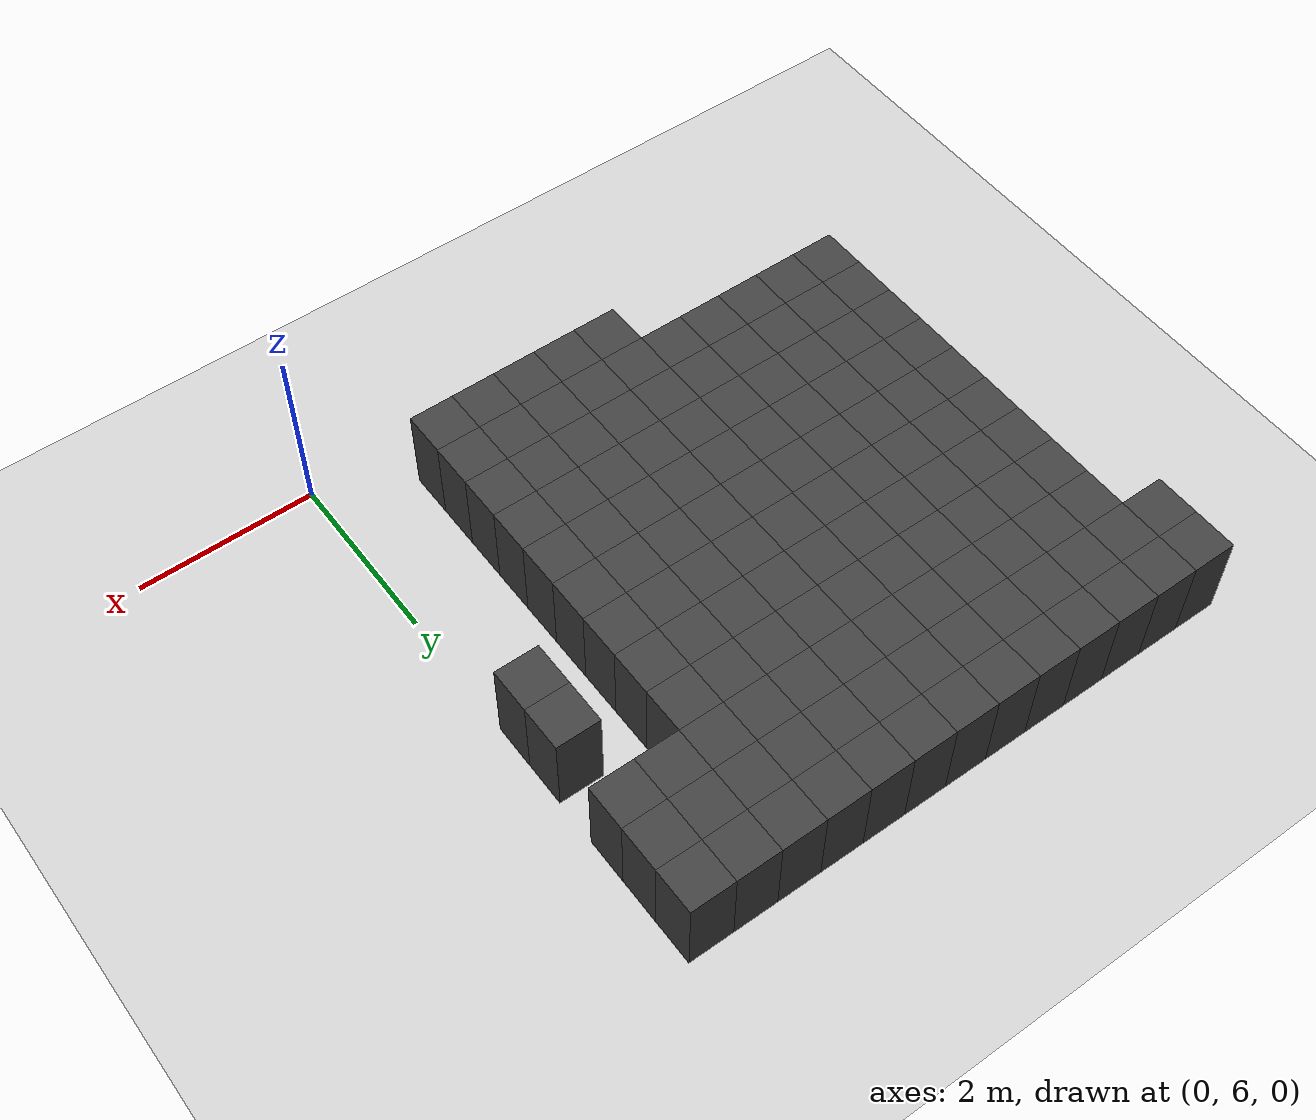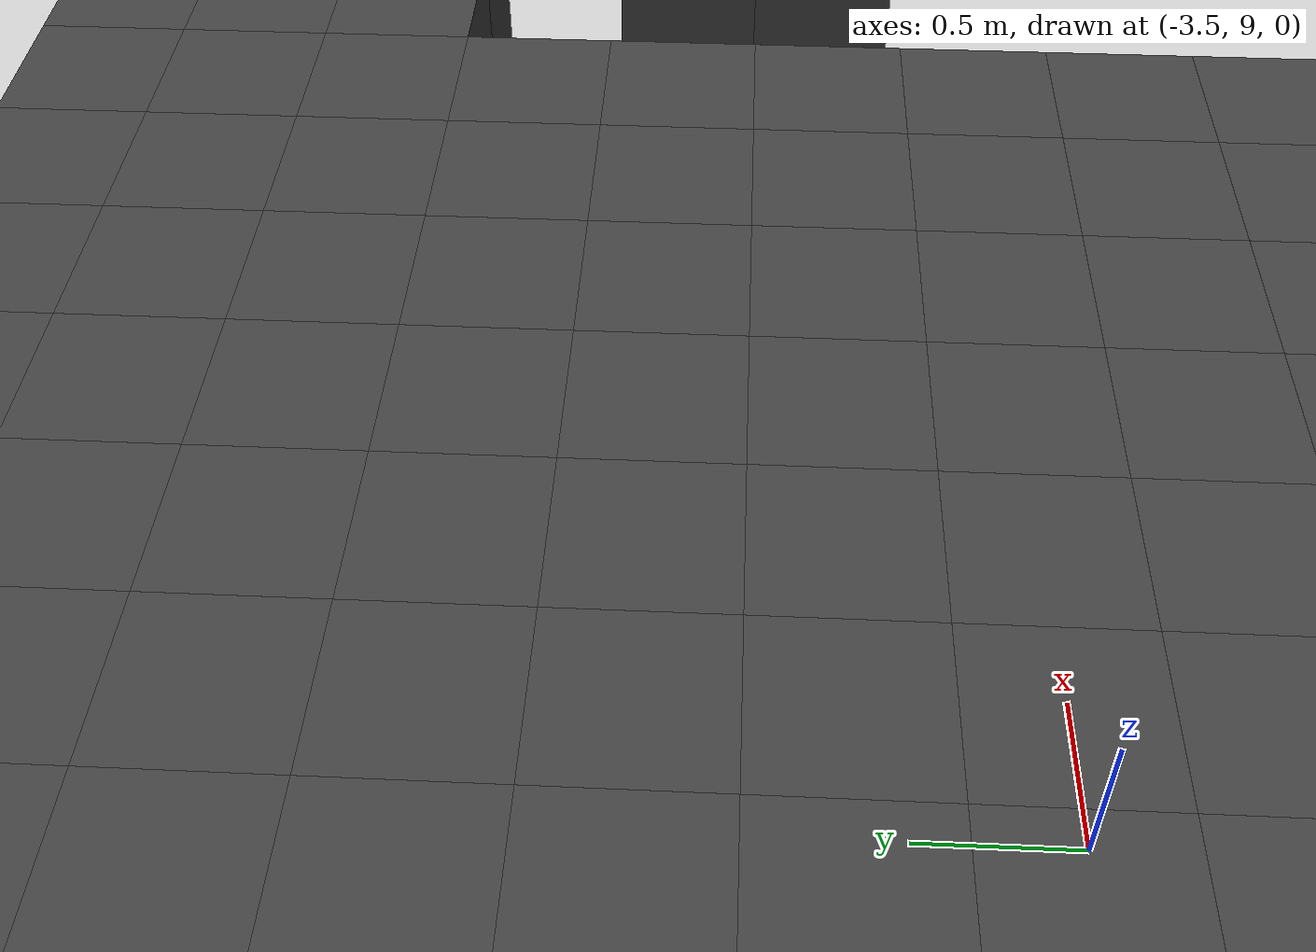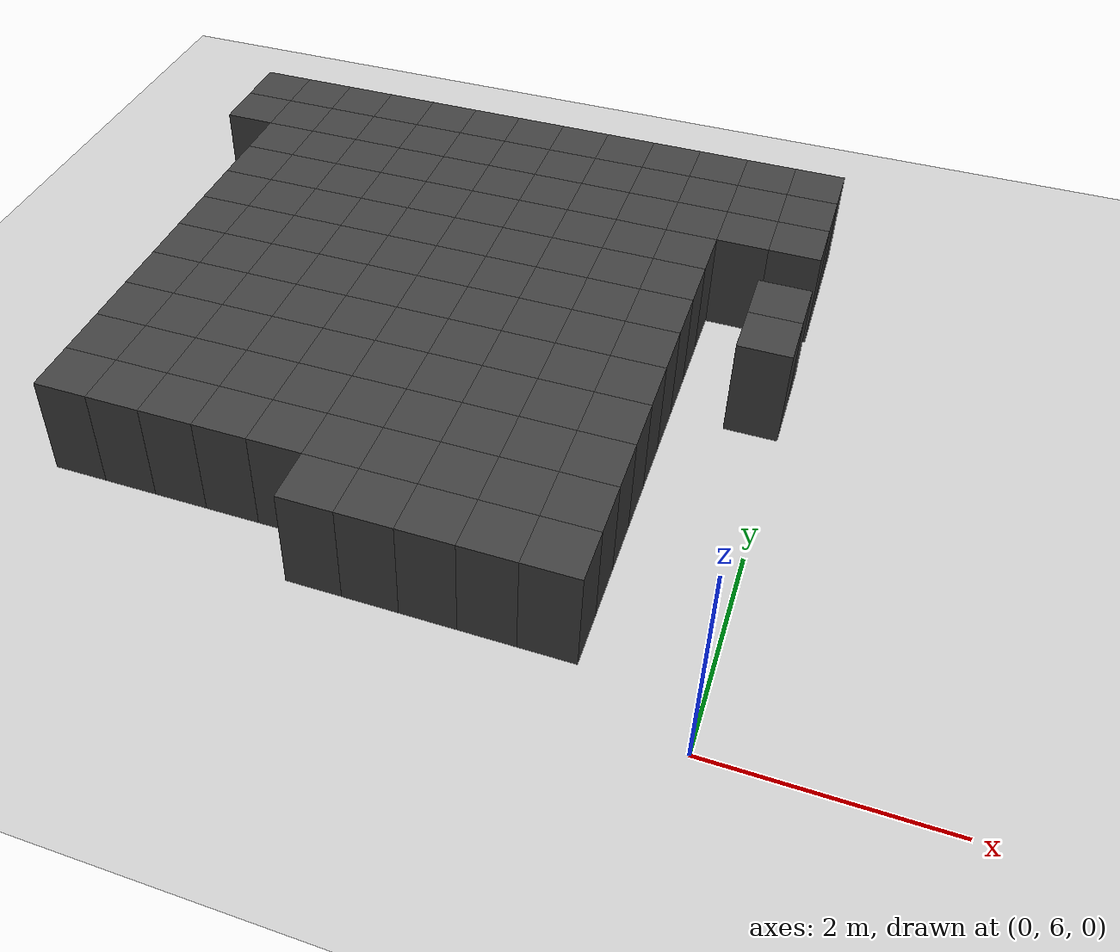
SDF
<sdf version="1.7">
 <world name="map_10764">
  <model name="ground_plane">
   <static>true</static>
   <link name="link">
    <collision name="collision">
     <geometry><plane><normal>0 0 1</normal><size>200 200</size></plane></geometry>
    </collision>
    <visual name="visual">
     <geometry><plane><normal>0 0 1</normal><size>200 200</size></plane></geometry>
     <material><ambient>0.8 0.8 0.8 1</ambient><diffuse>0.8 0.8 0.8 1</diffuse></material>
    </visual>
   </link>
  </model>
  <model name="maze_environment">
   <static>true</static>
   <link name="wall_12">
    <pose>-6.250 12.250 0.500 0 0 0</pose>
    <collision name="col"><geometry><box><size>0.5 0.5 1.0</size></box></geometry></collision>
    <visual name="vis">
     <geometry><box><size>0.5 0.5 1.0</size></box></geometry>
     <material><ambient>0.15 0.15 0.15 1</ambient><diffuse>0.25 0.25 0.25 1</diffuse></material>
    </visual>
   </link>
   <link name="wall_13">
    <pose>-5.750 12.250 0.500 0 0 0</pose>
    <collision name="col"><geometry><box><size>0.5 0.5 1.0</size></box></geometry></collision>
    <visual name="vis">
     <geometry><box><size>0.5 0.5 1.0</size></box></geometry>
     <material><ambient>0.15 0.15 0.15 1</ambient><diffuse>0.25 0.25 0.25 1</diffuse></material>
    </visual>
   </link>
   <link name="wall_14">
    <pose>-5.250 12.250 0.500 0 0 0</pose>
    <collision name="col"><geometry><box><size>0.5 0.5 1.0</size></box></geometry></collision>
    <visual name="vis">
     <geometry><box><size>0.5 0.5 1.0</size></box></geometry>
     <material><ambient>0.15 0.15 0.15 1</ambient><diffuse>0.25 0.25 0.25 1</diffuse></material>
    </visual>
   </link>
   <link name="wall_15">
    <pose>-4.750 12.250 0.500 0 0 0</pose>
    <collision name="col"><geometry><box><size>0.5 0.5 1.0</size></box></geometry></collision>
    <visual name="vis">
     <geometry><box><size>0.5 0.5 1.0</size></box></geometry>
     <material><ambient>0.15 0.15 0.15 1</ambient><diffuse>0.25 0.25 0.25 1</diffuse></material>
    </visual>
   </link>
   <link name="wall_16">
    <pose>-4.250 12.250 0.500 0 0 0</pose>
    <collision name="col"><geometry><box><size>0.5 0.5 1.0</size></box></geometry></collision>
    <visual name="vis">
     <geometry><box><size>0.5 0.5 1.0</size></box></geometry>
     <material><ambient>0.15 0.15 0.15 1</ambient><diffuse>0.25 0.25 0.25 1</diffuse></material>
    </visual>
   </link>
   <link name="wall_17">
    <pose>-3.750 12.250 0.500 0 0 0</pose>
    <collision name="col"><geometry><box><size>0.5 0.5 1.0</size></box></geometry></collision>
    <visual name="vis">
     <geometry><box><size>0.5 0.5 1.0</size></box></geometry>
     <material><ambient>0.15 0.15 0.15 1</ambient><diffuse>0.25 0.25 0.25 1</diffuse></material>
    </visual>
   </link>
   <link name="wall_18">
    <pose>-3.250 12.250 0.500 0 0 0</pose>
    <collision name="col"><geometry><box><size>0.5 0.5 1.0</size></box></geometry></collision>
    <visual name="vis">
     <geometry><box><size>0.5 0.5 1.0</size></box></geometry>
     <material><ambient>0.15 0.15 0.15 1</ambient><diffuse>0.25 0.25 0.25 1</diffuse></material>
    </visual>
   </link>
   <link name="wall_19">
    <pose>-2.750 12.250 0.500 0 0 0</pose>
    <collision name="col"><geometry><box><size>0.5 0.5 1.0</size></box></geometry></collision>
    <visual name="vis">
     <geometry><box><size>0.5 0.5 1.0</size></box></geometry>
     <material><ambient>0.15 0.15 0.15 1</ambient><diffuse>0.25 0.25 0.25 1</diffuse></material>
    </visual>
   </link>
   <link name="wall_20">
    <pose>-2.250 12.250 0.500 0 0 0</pose>
    <collision name="col"><geometry><box><size>0.5 0.5 1.0</size></box></geometry></collision>
    <visual name="vis">
     <geometry><box><size>0.5 0.5 1.0</size></box></geometry>
     <material><ambient>0.15 0.15 0.15 1</ambient><diffuse>0.25 0.25 0.25 1</diffuse></material>
    </visual>
   </link>
   <link name="wall_21">
    <pose>-1.750 12.250 0.500 0 0 0</pose>
    <collision name="col"><geometry><box><size>0.5 0.5 1.0</size></box></geometry></collision>
    <visual name="vis">
     <geometry><box><size>0.5 0.5 1.0</size></box></geometry>
     <material><ambient>0.15 0.15 0.15 1</ambient><diffuse>0.25 0.25 0.25 1</diffuse></material>
    </visual>
   </link>
   <link name="wall_22">
    <pose>-1.250 12.250 0.500 0 0 0</pose>
    <collision name="col"><geometry><box><size>0.5 0.5 1.0</size></box></geometry></collision>
    <visual name="vis">
     <geometry><box><size>0.5 0.5 1.0</size></box></geometry>
     <material><ambient>0.15 0.15 0.15 1</ambient><diffuse>0.25 0.25 0.25 1</diffuse></material>
    </visual>
   </link>
   <link name="wall_23">
    <pose>-0.750 12.250 0.500 0 0 0</pose>
    <collision name="col"><geometry><box><size>0.5 0.5 1.0</size></box></geometry></collision>
    <visual name="vis">
     <geometry><box><size>0.5 0.5 1.0</size></box></geometry>
     <material><ambient>0.15 0.15 0.15 1</ambient><diffuse>0.25 0.25 0.25 1</diffuse></material>
    </visual>
   </link>
   <link name="wall_24">
    <pose>-0.250 12.250 0.500 0 0 0</pose>
    <collision name="col"><geometry><box><size>0.5 0.5 1.0</size></box></geometry></collision>
    <visual name="vis">
     <geometry><box><size>0.5 0.5 1.0</size></box></geometry>
     <material><ambient>0.15 0.15 0.15 1</ambient><diffuse>0.25 0.25 0.25 1</diffuse></material>
    </visual>
   </link>
   <link name="wall_59">
    <pose>-6.250 11.750 0.500 0 0 0</pose>
    <collision name="col"><geometry><box><size>0.5 0.5 1.0</size></box></geometry></collision>
    <visual name="vis">
     <geometry><box><size>0.5 0.5 1.0</size></box></geometry>
     <material><ambient>0.15 0.15 0.15 1</ambient><diffuse>0.25 0.25 0.25 1</diffuse></material>
    </visual>
   </link>
   <link name="wall_60">
    <pose>-5.750 11.750 0.500 0 0 0</pose>
    <collision name="col"><geometry><box><size>0.5 0.5 1.0</size></box></geometry></collision>
    <visual name="vis">
     <geometry><box><size>0.5 0.5 1.0</size></box></geometry>
     <material><ambient>0.15 0.15 0.15 1</ambient><diffuse>0.25 0.25 0.25 1</diffuse></material>
    </visual>
   </link>
   <link name="wall_61">
    <pose>-5.250 11.750 0.500 0 0 0</pose>
    <collision name="col"><geometry><box><size>0.5 0.5 1.0</size></box></geometry></collision>
    <visual name="vis">
     <geometry><box><size>0.5 0.5 1.0</size></box></geometry>
     <material><ambient>0.15 0.15 0.15 1</ambient><diffuse>0.25 0.25 0.25 1</diffuse></material>
    </visual>
   </link>
   <link name="wall_62">
    <pose>-4.750 11.750 0.500 0 0 0</pose>
    <collision name="col"><geometry><box><size>0.5 0.5 1.0</size></box></geometry></collision>
    <visual name="vis">
     <geometry><box><size>0.5 0.5 1.0</size></box></geometry>
     <material><ambient>0.15 0.15 0.15 1</ambient><diffuse>0.25 0.25 0.25 1</diffuse></material>
    </visual>
   </link>
   <link name="wall_63">
    <pose>-4.250 11.750 0.500 0 0 0</pose>
    <collision name="col"><geometry><box><size>0.5 0.5 1.0</size></box></geometry></collision>
    <visual name="vis">
     <geometry><box><size>0.5 0.5 1.0</size></box></geometry>
     <material><ambient>0.15 0.15 0.15 1</ambient><diffuse>0.25 0.25 0.25 1</diffuse></material>
    </visual>
   </link>
   <link name="wall_64">
    <pose>-3.750 11.750 0.500 0 0 0</pose>
    <collision name="col"><geometry><box><size>0.5 0.5 1.0</size></box></geometry></collision>
    <visual name="vis">
     <geometry><box><size>0.5 0.5 1.0</size></box></geometry>
     <material><ambient>0.15 0.15 0.15 1</ambient><diffuse>0.25 0.25 0.25 1</diffuse></material>
    </visual>
   </link>
   <link name="wall_65">
    <pose>-3.250 11.750 0.500 0 0 0</pose>
    <collision name="col"><geometry><box><size>0.5 0.5 1.0</size></box></geometry></collision>
    <visual name="vis">
     <geometry><box><size>0.5 0.5 1.0</size></box></geometry>
     <material><ambient>0.15 0.15 0.15 1</ambient><diffuse>0.25 0.25 0.25 1</diffuse></material>
    </visual>
   </link>
   <link name="wall_66">
    <pose>-2.750 11.750 0.500 0 0 0</pose>
    <collision name="col"><geometry><box><size>0.5 0.5 1.0</size></box></geometry></collision>
    <visual name="vis">
     <geometry><box><size>0.5 0.5 1.0</size></box></geometry>
     <material><ambient>0.15 0.15 0.15 1</ambient><diffuse>0.25 0.25 0.25 1</diffuse></material>
    </visual>
   </link>
   <link name="wall_67">
    <pose>-2.250 11.750 0.500 0 0 0</pose>
    <collision name="col"><geometry><box><size>0.5 0.5 1.0</size></box></geometry></collision>
    <visual name="vis">
     <geometry><box><size>0.5 0.5 1.0</size></box></geometry>
     <material><ambient>0.15 0.15 0.15 1</ambient><diffuse>0.25 0.25 0.25 1</diffuse></material>
    </visual>
   </link>
   <link name="wall_68">
    <pose>-1.750 11.750 0.500 0 0 0</pose>
    <collision name="col"><geometry><box><size>0.5 0.5 1.0</size></box></geometry></collision>
    <visual name="vis">
     <geometry><box><size>0.5 0.5 1.0</size></box></geometry>
     <material><ambient>0.15 0.15 0.15 1</ambient><diffuse>0.25 0.25 0.25 1</diffuse></material>
    </visual>
   </link>
   <link name="wall_69">
    <pose>-1.250 11.750 0.500 0 0 0</pose>
    <collision name="col"><geometry><box><size>0.5 0.5 1.0</size></box></geometry></collision>
    <visual name="vis">
     <geometry><box><size>0.5 0.5 1.0</size></box></geometry>
     <material><ambient>0.15 0.15 0.15 1</ambient><diffuse>0.25 0.25 0.25 1</diffuse></material>
    </visual>
   </link>
   <link name="wall_70">
    <pose>-0.750 11.750 0.500 0 0 0</pose>
    <collision name="col"><geometry><box><size>0.5 0.5 1.0</size></box></geometry></collision>
    <visual name="vis">
     <geometry><box><size>0.5 0.5 1.0</size></box></geometry>
     <material><ambient>0.15 0.15 0.15 1</ambient><diffuse>0.25 0.25 0.25 1</diffuse></material>
    </visual>
   </link>
   <link name="wall_71">
    <pose>-0.250 11.750 0.500 0 0 0</pose>
    <collision name="col"><geometry><box><size>0.5 0.5 1.0</size></box></geometry></collision>
    <visual name="vis">
     <geometry><box><size>0.5 0.5 1.0</size></box></geometry>
     <material><ambient>0.15 0.15 0.15 1</ambient><diffuse>0.25 0.25 0.25 1</diffuse></material>
    </visual>
   </link>
   <link name="wall_100">
    <pose>-5.750 11.250 0.500 0 0 0</pose>
    <collision name="col"><geometry><box><size>0.5 0.5 1.0</size></box></geometry></collision>
    <visual name="vis">
     <geometry><box><size>0.5 0.5 1.0</size></box></geometry>
     <material><ambient>0.15 0.15 0.15 1</ambient><diffuse>0.25 0.25 0.25 1</diffuse></material>
    </visual>
   </link>
   <link name="wall_101">
    <pose>-5.250 11.250 0.500 0 0 0</pose>
    <collision name="col"><geometry><box><size>0.5 0.5 1.0</size></box></geometry></collision>
    <visual name="vis">
     <geometry><box><size>0.5 0.5 1.0</size></box></geometry>
     <material><ambient>0.15 0.15 0.15 1</ambient><diffuse>0.25 0.25 0.25 1</diffuse></material>
    </visual>
   </link>
   <link name="wall_102">
    <pose>-4.750 11.250 0.500 0 0 0</pose>
    <collision name="col"><geometry><box><size>0.5 0.5 1.0</size></box></geometry></collision>
    <visual name="vis">
     <geometry><box><size>0.5 0.5 1.0</size></box></geometry>
     <material><ambient>0.15 0.15 0.15 1</ambient><diffuse>0.25 0.25 0.25 1</diffuse></material>
    </visual>
   </link>
   <link name="wall_103">
    <pose>-4.250 11.250 0.500 0 0 0</pose>
    <collision name="col"><geometry><box><size>0.5 0.5 1.0</size></box></geometry></collision>
    <visual name="vis">
     <geometry><box><size>0.5 0.5 1.0</size></box></geometry>
     <material><ambient>0.15 0.15 0.15 1</ambient><diffuse>0.25 0.25 0.25 1</diffuse></material>
    </visual>
   </link>
   <link name="wall_104">
    <pose>-3.750 11.250 0.500 0 0 0</pose>
    <collision name="col"><geometry><box><size>0.5 0.5 1.0</size></box></geometry></collision>
    <visual name="vis">
     <geometry><box><size>0.5 0.5 1.0</size></box></geometry>
     <material><ambient>0.15 0.15 0.15 1</ambient><diffuse>0.25 0.25 0.25 1</diffuse></material>
    </visual>
   </link>
   <link name="wall_105">
    <pose>-3.250 11.250 0.500 0 0 0</pose>
    <collision name="col"><geometry><box><size>0.5 0.5 1.0</size></box></geometry></collision>
    <visual name="vis">
     <geometry><box><size>0.5 0.5 1.0</size></box></geometry>
     <material><ambient>0.15 0.15 0.15 1</ambient><diffuse>0.25 0.25 0.25 1</diffuse></material>
    </visual>
   </link>
   <link name="wall_106">
    <pose>-2.750 11.250 0.500 0 0 0</pose>
    <collision name="col"><geometry><box><size>0.5 0.5 1.0</size></box></geometry></collision>
    <visual name="vis">
     <geometry><box><size>0.5 0.5 1.0</size></box></geometry>
     <material><ambient>0.15 0.15 0.15 1</ambient><diffuse>0.25 0.25 0.25 1</diffuse></material>
    </visual>
   </link>
   <link name="wall_107">
    <pose>-2.250 11.250 0.500 0 0 0</pose>
    <collision name="col"><geometry><box><size>0.5 0.5 1.0</size></box></geometry></collision>
    <visual name="vis">
     <geometry><box><size>0.5 0.5 1.0</size></box></geometry>
     <material><ambient>0.15 0.15 0.15 1</ambient><diffuse>0.25 0.25 0.25 1</diffuse></material>
    </visual>
   </link>
   <link name="wall_108">
    <pose>-1.750 11.250 0.500 0 0 0</pose>
    <collision name="col"><geometry><box><size>0.5 0.5 1.0</size></box></geometry></collision>
    <visual name="vis">
     <geometry><box><size>0.5 0.5 1.0</size></box></geometry>
     <material><ambient>0.15 0.15 0.15 1</ambient><diffuse>0.25 0.25 0.25 1</diffuse></material>
    </visual>
   </link>
   <link name="wall_109">
    <pose>-1.250 11.250 0.500 0 0 0</pose>
    <collision name="col"><geometry><box><size>0.5 0.5 1.0</size></box></geometry></collision>
    <visual name="vis">
     <geometry><box><size>0.5 0.5 1.0</size></box></geometry>
     <material><ambient>0.15 0.15 0.15 1</ambient><diffuse>0.25 0.25 0.25 1</diffuse></material>
    </visual>
   </link>
   <link name="wall_110">
    <pose>-0.750 11.250 0.500 0 0 0</pose>
    <collision name="col"><geometry><box><size>0.5 0.5 1.0</size></box></geometry></collision>
    <visual name="vis">
     <geometry><box><size>0.5 0.5 1.0</size></box></geometry>
     <material><ambient>0.15 0.15 0.15 1</ambient><diffuse>0.25 0.25 0.25 1</diffuse></material>
    </visual>
   </link>
   <link name="wall_111">
    <pose>-0.250 11.250 0.500 0 0 0</pose>
    <collision name="col"><geometry><box><size>0.5 0.5 1.0</size></box></geometry></collision>
    <visual name="vis">
     <geometry><box><size>0.5 0.5 1.0</size></box></geometry>
     <material><ambient>0.15 0.15 0.15 1</ambient><diffuse>0.25 0.25 0.25 1</diffuse></material>
    </visual>
   </link>
   <link name="wall_140">
    <pose>-5.750 10.750 0.500 0 0 0</pose>
    <collision name="col"><geometry><box><size>0.5 0.5 1.0</size></box></geometry></collision>
    <visual name="vis">
     <geometry><box><size>0.5 0.5 1.0</size></box></geometry>
     <material><ambient>0.15 0.15 0.15 1</ambient><diffuse>0.25 0.25 0.25 1</diffuse></material>
    </visual>
   </link>
   <link name="wall_141">
    <pose>-5.250 10.750 0.500 0 0 0</pose>
    <collision name="col"><geometry><box><size>0.5 0.5 1.0</size></box></geometry></collision>
    <visual name="vis">
     <geometry><box><size>0.5 0.5 1.0</size></box></geometry>
     <material><ambient>0.15 0.15 0.15 1</ambient><diffuse>0.25 0.25 0.25 1</diffuse></material>
    </visual>
   </link>
   <link name="wall_142">
    <pose>-4.750 10.750 0.500 0 0 0</pose>
    <collision name="col"><geometry><box><size>0.5 0.5 1.0</size></box></geometry></collision>
    <visual name="vis">
     <geometry><box><size>0.5 0.5 1.0</size></box></geometry>
     <material><ambient>0.15 0.15 0.15 1</ambient><diffuse>0.25 0.25 0.25 1</diffuse></material>
    </visual>
   </link>
   <link name="wall_143">
    <pose>-4.250 10.750 0.500 0 0 0</pose>
    <collision name="col"><geometry><box><size>0.5 0.5 1.0</size></box></geometry></collision>
    <visual name="vis">
     <geometry><box><size>0.5 0.5 1.0</size></box></geometry>
     <material><ambient>0.15 0.15 0.15 1</ambient><diffuse>0.25 0.25 0.25 1</diffuse></material>
    </visual>
   </link>
   <link name="wall_144">
    <pose>-3.750 10.750 0.500 0 0 0</pose>
    <collision name="col"><geometry><box><size>0.5 0.5 1.0</size></box></geometry></collision>
    <visual name="vis">
     <geometry><box><size>0.5 0.5 1.0</size></box></geometry>
     <material><ambient>0.15 0.15 0.15 1</ambient><diffuse>0.25 0.25 0.25 1</diffuse></material>
    </visual>
   </link>
   <link name="wall_145">
    <pose>-3.250 10.750 0.500 0 0 0</pose>
    <collision name="col"><geometry><box><size>0.5 0.5 1.0</size></box></geometry></collision>
    <visual name="vis">
     <geometry><box><size>0.5 0.5 1.0</size></box></geometry>
     <material><ambient>0.15 0.15 0.15 1</ambient><diffuse>0.25 0.25 0.25 1</diffuse></material>
    </visual>
   </link>
   <link name="wall_146">
    <pose>-2.750 10.750 0.500 0 0 0</pose>
    <collision name="col"><geometry><box><size>0.5 0.5 1.0</size></box></geometry></collision>
    <visual name="vis">
     <geometry><box><size>0.5 0.5 1.0</size></box></geometry>
     <material><ambient>0.15 0.15 0.15 1</ambient><diffuse>0.25 0.25 0.25 1</diffuse></material>
    </visual>
   </link>
   <link name="wall_147">
    <pose>-2.250 10.750 0.500 0 0 0</pose>
    <collision name="col"><geometry><box><size>0.5 0.5 1.0</size></box></geometry></collision>
    <visual name="vis">
     <geometry><box><size>0.5 0.5 1.0</size></box></geometry>
     <material><ambient>0.15 0.15 0.15 1</ambient><diffuse>0.25 0.25 0.25 1</diffuse></material>
    </visual>
   </link>
   <link name="wall_148">
    <pose>-1.750 10.750 0.500 0 0 0</pose>
    <collision name="col"><geometry><box><size>0.5 0.5 1.0</size></box></geometry></collision>
    <visual name="vis">
     <geometry><box><size>0.5 0.5 1.0</size></box></geometry>
     <material><ambient>0.15 0.15 0.15 1</ambient><diffuse>0.25 0.25 0.25 1</diffuse></material>
    </visual>
   </link>
   <link name="wall_149">
    <pose>-1.250 10.750 0.500 0 0 0</pose>
    <collision name="col"><geometry><box><size>0.5 0.5 1.0</size></box></geometry></collision>
    <visual name="vis">
     <geometry><box><size>0.5 0.5 1.0</size></box></geometry>
     <material><ambient>0.15 0.15 0.15 1</ambient><diffuse>0.25 0.25 0.25 1</diffuse></material>
    </visual>
   </link>
   <link name="wall_178">
    <pose>-5.750 10.250 0.500 0 0 0</pose>
    <collision name="col"><geometry><box><size>0.5 0.5 1.0</size></box></geometry></collision>
    <visual name="vis">
     <geometry><box><size>0.5 0.5 1.0</size></box></geometry>
     <material><ambient>0.15 0.15 0.15 1</ambient><diffuse>0.25 0.25 0.25 1</diffuse></material>
    </visual>
   </link>
   <link name="wall_179">
    <pose>-5.250 10.250 0.500 0 0 0</pose>
    <collision name="col"><geometry><box><size>0.5 0.5 1.0</size></box></geometry></collision>
    <visual name="vis">
     <geometry><box><size>0.5 0.5 1.0</size></box></geometry>
     <material><ambient>0.15 0.15 0.15 1</ambient><diffuse>0.25 0.25 0.25 1</diffuse></material>
    </visual>
   </link>
   <link name="wall_180">
    <pose>-4.750 10.250 0.500 0 0 0</pose>
    <collision name="col"><geometry><box><size>0.5 0.5 1.0</size></box></geometry></collision>
    <visual name="vis">
     <geometry><box><size>0.5 0.5 1.0</size></box></geometry>
     <material><ambient>0.15 0.15 0.15 1</ambient><diffuse>0.25 0.25 0.25 1</diffuse></material>
    </visual>
   </link>
   <link name="wall_181">
    <pose>-4.250 10.250 0.500 0 0 0</pose>
    <collision name="col"><geometry><box><size>0.5 0.5 1.0</size></box></geometry></collision>
    <visual name="vis">
     <geometry><box><size>0.5 0.5 1.0</size></box></geometry>
     <material><ambient>0.15 0.15 0.15 1</ambient><diffuse>0.25 0.25 0.25 1</diffuse></material>
    </visual>
   </link>
   <link name="wall_182">
    <pose>-3.750 10.250 0.500 0 0 0</pose>
    <collision name="col"><geometry><box><size>0.5 0.5 1.0</size></box></geometry></collision>
    <visual name="vis">
     <geometry><box><size>0.5 0.5 1.0</size></box></geometry>
     <material><ambient>0.15 0.15 0.15 1</ambient><diffuse>0.25 0.25 0.25 1</diffuse></material>
    </visual>
   </link>
   <link name="wall_183">
    <pose>-3.250 10.250 0.500 0 0 0</pose>
    <collision name="col"><geometry><box><size>0.5 0.5 1.0</size></box></geometry></collision>
    <visual name="vis">
     <geometry><box><size>0.5 0.5 1.0</size></box></geometry>
     <material><ambient>0.15 0.15 0.15 1</ambient><diffuse>0.25 0.25 0.25 1</diffuse></material>
    </visual>
   </link>
   <link name="wall_184">
    <pose>-2.750 10.250 0.500 0 0 0</pose>
    <collision name="col"><geometry><box><size>0.5 0.5 1.0</size></box></geometry></collision>
    <visual name="vis">
     <geometry><box><size>0.5 0.5 1.0</size></box></geometry>
     <material><ambient>0.15 0.15 0.15 1</ambient><diffuse>0.25 0.25 0.25 1</diffuse></material>
    </visual>
   </link>
   <link name="wall_185">
    <pose>-2.250 10.250 0.500 0 0 0</pose>
    <collision name="col"><geometry><box><size>0.5 0.5 1.0</size></box></geometry></collision>
    <visual name="vis">
     <geometry><box><size>0.5 0.5 1.0</size></box></geometry>
     <material><ambient>0.15 0.15 0.15 1</ambient><diffuse>0.25 0.25 0.25 1</diffuse></material>
    </visual>
   </link>
   <link name="wall_186">
    <pose>-1.750 10.250 0.500 0 0 0</pose>
    <collision name="col"><geometry><box><size>0.5 0.5 1.0</size></box></geometry></collision>
    <visual name="vis">
     <geometry><box><size>0.5 0.5 1.0</size></box></geometry>
     <material><ambient>0.15 0.15 0.15 1</ambient><diffuse>0.25 0.25 0.25 1</diffuse></material>
    </visual>
   </link>
   <link name="wall_187">
    <pose>-1.250 10.250 0.500 0 0 0</pose>
    <collision name="col"><geometry><box><size>0.5 0.5 1.0</size></box></geometry></collision>
    <visual name="vis">
     <geometry><box><size>0.5 0.5 1.0</size></box></geometry>
     <material><ambient>0.15 0.15 0.15 1</ambient><diffuse>0.25 0.25 0.25 1</diffuse></material>
    </visual>
   </link>
   <link name="wall_188">
    <pose>-0.250 10.250 0.500 0 0 0</pose>
    <collision name="col"><geometry><box><size>0.5 0.5 1.0</size></box></geometry></collision>
    <visual name="vis">
     <geometry><box><size>0.5 0.5 1.0</size></box></geometry>
     <material><ambient>0.15 0.15 0.15 1</ambient><diffuse>0.25 0.25 0.25 1</diffuse></material>
    </visual>
   </link>
   <link name="wall_219">
    <pose>-5.750 9.750 0.500 0 0 0</pose>
    <collision name="col"><geometry><box><size>0.5 0.5 1.0</size></box></geometry></collision>
    <visual name="vis">
     <geometry><box><size>0.5 0.5 1.0</size></box></geometry>
     <material><ambient>0.15 0.15 0.15 1</ambient><diffuse>0.25 0.25 0.25 1</diffuse></material>
    </visual>
   </link>
   <link name="wall_220">
    <pose>-5.250 9.750 0.500 0 0 0</pose>
    <collision name="col"><geometry><box><size>0.5 0.5 1.0</size></box></geometry></collision>
    <visual name="vis">
     <geometry><box><size>0.5 0.5 1.0</size></box></geometry>
     <material><ambient>0.15 0.15 0.15 1</ambient><diffuse>0.25 0.25 0.25 1</diffuse></material>
    </visual>
   </link>
   <link name="wall_221">
    <pose>-4.750 9.750 0.500 0 0 0</pose>
    <collision name="col"><geometry><box><size>0.5 0.5 1.0</size></box></geometry></collision>
    <visual name="vis">
     <geometry><box><size>0.5 0.5 1.0</size></box></geometry>
     <material><ambient>0.15 0.15 0.15 1</ambient><diffuse>0.25 0.25 0.25 1</diffuse></material>
    </visual>
   </link>
   <link name="wall_222">
    <pose>-4.250 9.750 0.500 0 0 0</pose>
    <collision name="col"><geometry><box><size>0.5 0.5 1.0</size></box></geometry></collision>
    <visual name="vis">
     <geometry><box><size>0.5 0.5 1.0</size></box></geometry>
     <material><ambient>0.15 0.15 0.15 1</ambient><diffuse>0.25 0.25 0.25 1</diffuse></material>
    </visual>
   </link>
   <link name="wall_223">
    <pose>-3.750 9.750 0.500 0 0 0</pose>
    <collision name="col"><geometry><box><size>0.5 0.5 1.0</size></box></geometry></collision>
    <visual name="vis">
     <geometry><box><size>0.5 0.5 1.0</size></box></geometry>
     <material><ambient>0.15 0.15 0.15 1</ambient><diffuse>0.25 0.25 0.25 1</diffuse></material>
    </visual>
   </link>
   <link name="wall_224">
    <pose>-3.250 9.750 0.500 0 0 0</pose>
    <collision name="col"><geometry><box><size>0.5 0.5 1.0</size></box></geometry></collision>
    <visual name="vis">
     <geometry><box><size>0.5 0.5 1.0</size></box></geometry>
     <material><ambient>0.15 0.15 0.15 1</ambient><diffuse>0.25 0.25 0.25 1</diffuse></material>
    </visual>
   </link>
   <link name="wall_225">
    <pose>-2.750 9.750 0.500 0 0 0</pose>
    <collision name="col"><geometry><box><size>0.5 0.5 1.0</size></box></geometry></collision>
    <visual name="vis">
     <geometry><box><size>0.5 0.5 1.0</size></box></geometry>
     <material><ambient>0.15 0.15 0.15 1</ambient><diffuse>0.25 0.25 0.25 1</diffuse></material>
    </visual>
   </link>
   <link name="wall_226">
    <pose>-2.250 9.750 0.500 0 0 0</pose>
    <collision name="col"><geometry><box><size>0.5 0.5 1.0</size></box></geometry></collision>
    <visual name="vis">
     <geometry><box><size>0.5 0.5 1.0</size></box></geometry>
     <material><ambient>0.15 0.15 0.15 1</ambient><diffuse>0.25 0.25 0.25 1</diffuse></material>
    </visual>
   </link>
   <link name="wall_227">
    <pose>-1.750 9.750 0.500 0 0 0</pose>
    <collision name="col"><geometry><box><size>0.5 0.5 1.0</size></box></geometry></collision>
    <visual name="vis">
     <geometry><box><size>0.5 0.5 1.0</size></box></geometry>
     <material><ambient>0.15 0.15 0.15 1</ambient><diffuse>0.25 0.25 0.25 1</diffuse></material>
    </visual>
   </link>
   <link name="wall_228">
    <pose>-1.250 9.750 0.500 0 0 0</pose>
    <collision name="col"><geometry><box><size>0.5 0.5 1.0</size></box></geometry></collision>
    <visual name="vis">
     <geometry><box><size>0.5 0.5 1.0</size></box></geometry>
     <material><ambient>0.15 0.15 0.15 1</ambient><diffuse>0.25 0.25 0.25 1</diffuse></material>
    </visual>
   </link>
   <link name="wall_229">
    <pose>-0.250 9.750 0.500 0 0 0</pose>
    <collision name="col"><geometry><box><size>0.5 0.5 1.0</size></box></geometry></collision>
    <visual name="vis">
     <geometry><box><size>0.5 0.5 1.0</size></box></geometry>
     <material><ambient>0.15 0.15 0.15 1</ambient><diffuse>0.25 0.25 0.25 1</diffuse></material>
    </visual>
   </link>
   <link name="wall_267">
    <pose>-5.750 9.250 0.500 0 0 0</pose>
    <collision name="col"><geometry><box><size>0.5 0.5 1.0</size></box></geometry></collision>
    <visual name="vis">
     <geometry><box><size>0.5 0.5 1.0</size></box></geometry>
     <material><ambient>0.15 0.15 0.15 1</ambient><diffuse>0.25 0.25 0.25 1</diffuse></material>
    </visual>
   </link>
   <link name="wall_268">
    <pose>-5.250 9.250 0.500 0 0 0</pose>
    <collision name="col"><geometry><box><size>0.5 0.5 1.0</size></box></geometry></collision>
    <visual name="vis">
     <geometry><box><size>0.5 0.5 1.0</size></box></geometry>
     <material><ambient>0.15 0.15 0.15 1</ambient><diffuse>0.25 0.25 0.25 1</diffuse></material>
    </visual>
   </link>
   <link name="wall_269">
    <pose>-4.750 9.250 0.500 0 0 0</pose>
    <collision name="col"><geometry><box><size>0.5 0.5 1.0</size></box></geometry></collision>
    <visual name="vis">
     <geometry><box><size>0.5 0.5 1.0</size></box></geometry>
     <material><ambient>0.15 0.15 0.15 1</ambient><diffuse>0.25 0.25 0.25 1</diffuse></material>
    </visual>
   </link>
   <link name="wall_270">
    <pose>-4.250 9.250 0.500 0 0 0</pose>
    <collision name="col"><geometry><box><size>0.5 0.5 1.0</size></box></geometry></collision>
    <visual name="vis">
     <geometry><box><size>0.5 0.5 1.0</size></box></geometry>
     <material><ambient>0.15 0.15 0.15 1</ambient><diffuse>0.25 0.25 0.25 1</diffuse></material>
    </visual>
   </link>
   <link name="wall_271">
    <pose>-3.750 9.250 0.500 0 0 0</pose>
    <collision name="col"><geometry><box><size>0.5 0.5 1.0</size></box></geometry></collision>
    <visual name="vis">
     <geometry><box><size>0.5 0.5 1.0</size></box></geometry>
     <material><ambient>0.15 0.15 0.15 1</ambient><diffuse>0.25 0.25 0.25 1</diffuse></material>
    </visual>
   </link>
   <link name="wall_272">
    <pose>-3.250 9.250 0.500 0 0 0</pose>
    <collision name="col"><geometry><box><size>0.5 0.5 1.0</size></box></geometry></collision>
    <visual name="vis">
     <geometry><box><size>0.5 0.5 1.0</size></box></geometry>
     <material><ambient>0.15 0.15 0.15 1</ambient><diffuse>0.25 0.25 0.25 1</diffuse></material>
    </visual>
   </link>
   <link name="wall_273">
    <pose>-2.750 9.250 0.500 0 0 0</pose>
    <collision name="col"><geometry><box><size>0.5 0.5 1.0</size></box></geometry></collision>
    <visual name="vis">
     <geometry><box><size>0.5 0.5 1.0</size></box></geometry>
     <material><ambient>0.15 0.15 0.15 1</ambient><diffuse>0.25 0.25 0.25 1</diffuse></material>
    </visual>
   </link>
   <link name="wall_274">
    <pose>-2.250 9.250 0.500 0 0 0</pose>
    <collision name="col"><geometry><box><size>0.5 0.5 1.0</size></box></geometry></collision>
    <visual name="vis">
     <geometry><box><size>0.5 0.5 1.0</size></box></geometry>
     <material><ambient>0.15 0.15 0.15 1</ambient><diffuse>0.25 0.25 0.25 1</diffuse></material>
    </visual>
   </link>
   <link name="wall_275">
    <pose>-1.750 9.250 0.500 0 0 0</pose>
    <collision name="col"><geometry><box><size>0.5 0.5 1.0</size></box></geometry></collision>
    <visual name="vis">
     <geometry><box><size>0.5 0.5 1.0</size></box></geometry>
     <material><ambient>0.15 0.15 0.15 1</ambient><diffuse>0.25 0.25 0.25 1</diffuse></material>
    </visual>
   </link>
   <link name="wall_276">
    <pose>-1.250 9.250 0.500 0 0 0</pose>
    <collision name="col"><geometry><box><size>0.5 0.5 1.0</size></box></geometry></collision>
    <visual name="vis">
     <geometry><box><size>0.5 0.5 1.0</size></box></geometry>
     <material><ambient>0.15 0.15 0.15 1</ambient><diffuse>0.25 0.25 0.25 1</diffuse></material>
    </visual>
   </link>
   <link name="wall_315">
    <pose>-5.750 8.750 0.500 0 0 0</pose>
    <collision name="col"><geometry><box><size>0.5 0.5 1.0</size></box></geometry></collision>
    <visual name="vis">
     <geometry><box><size>0.5 0.5 1.0</size></box></geometry>
     <material><ambient>0.15 0.15 0.15 1</ambient><diffuse>0.25 0.25 0.25 1</diffuse></material>
    </visual>
   </link>
   <link name="wall_316">
    <pose>-5.250 8.750 0.500 0 0 0</pose>
    <collision name="col"><geometry><box><size>0.5 0.5 1.0</size></box></geometry></collision>
    <visual name="vis">
     <geometry><box><size>0.5 0.5 1.0</size></box></geometry>
     <material><ambient>0.15 0.15 0.15 1</ambient><diffuse>0.25 0.25 0.25 1</diffuse></material>
    </visual>
   </link>
   <link name="wall_317">
    <pose>-4.750 8.750 0.500 0 0 0</pose>
    <collision name="col"><geometry><box><size>0.5 0.5 1.0</size></box></geometry></collision>
    <visual name="vis">
     <geometry><box><size>0.5 0.5 1.0</size></box></geometry>
     <material><ambient>0.15 0.15 0.15 1</ambient><diffuse>0.25 0.25 0.25 1</diffuse></material>
    </visual>
   </link>
   <link name="wall_318">
    <pose>-4.250 8.750 0.500 0 0 0</pose>
    <collision name="col"><geometry><box><size>0.5 0.5 1.0</size></box></geometry></collision>
    <visual name="vis">
     <geometry><box><size>0.5 0.5 1.0</size></box></geometry>
     <material><ambient>0.15 0.15 0.15 1</ambient><diffuse>0.25 0.25 0.25 1</diffuse></material>
    </visual>
   </link>
   <link name="wall_319">
    <pose>-3.750 8.750 0.500 0 0 0</pose>
    <collision name="col"><geometry><box><size>0.5 0.5 1.0</size></box></geometry></collision>
    <visual name="vis">
     <geometry><box><size>0.5 0.5 1.0</size></box></geometry>
     <material><ambient>0.15 0.15 0.15 1</ambient><diffuse>0.25 0.25 0.25 1</diffuse></material>
    </visual>
   </link>
   <link name="wall_320">
    <pose>-3.250 8.750 0.500 0 0 0</pose>
    <collision name="col"><geometry><box><size>0.5 0.5 1.0</size></box></geometry></collision>
    <visual name="vis">
     <geometry><box><size>0.5 0.5 1.0</size></box></geometry>
     <material><ambient>0.15 0.15 0.15 1</ambient><diffuse>0.25 0.25 0.25 1</diffuse></material>
    </visual>
   </link>
   <link name="wall_321">
    <pose>-2.750 8.750 0.500 0 0 0</pose>
    <collision name="col"><geometry><box><size>0.5 0.5 1.0</size></box></geometry></collision>
    <visual name="vis">
     <geometry><box><size>0.5 0.5 1.0</size></box></geometry>
     <material><ambient>0.15 0.15 0.15 1</ambient><diffuse>0.25 0.25 0.25 1</diffuse></material>
    </visual>
   </link>
   <link name="wall_322">
    <pose>-2.250 8.750 0.500 0 0 0</pose>
    <collision name="col"><geometry><box><size>0.5 0.5 1.0</size></box></geometry></collision>
    <visual name="vis">
     <geometry><box><size>0.5 0.5 1.0</size></box></geometry>
     <material><ambient>0.15 0.15 0.15 1</ambient><diffuse>0.25 0.25 0.25 1</diffuse></material>
    </visual>
   </link>
   <link name="wall_323">
    <pose>-1.750 8.750 0.500 0 0 0</pose>
    <collision name="col"><geometry><box><size>0.5 0.5 1.0</size></box></geometry></collision>
    <visual name="vis">
     <geometry><box><size>0.5 0.5 1.0</size></box></geometry>
     <material><ambient>0.15 0.15 0.15 1</ambient><diffuse>0.25 0.25 0.25 1</diffuse></material>
    </visual>
   </link>
   <link name="wall_324">
    <pose>-1.250 8.750 0.500 0 0 0</pose>
    <collision name="col"><geometry><box><size>0.5 0.5 1.0</size></box></geometry></collision>
    <visual name="vis">
     <geometry><box><size>0.5 0.5 1.0</size></box></geometry>
     <material><ambient>0.15 0.15 0.15 1</ambient><diffuse>0.25 0.25 0.25 1</diffuse></material>
    </visual>
   </link>
   <link name="wall_363">
    <pose>-5.750 8.250 0.500 0 0 0</pose>
    <collision name="col"><geometry><box><size>0.5 0.5 1.0</size></box></geometry></collision>
    <visual name="vis">
     <geometry><box><size>0.5 0.5 1.0</size></box></geometry>
     <material><ambient>0.15 0.15 0.15 1</ambient><diffuse>0.25 0.25 0.25 1</diffuse></material>
    </visual>
   </link>
   <link name="wall_364">
    <pose>-5.250 8.250 0.500 0 0 0</pose>
    <collision name="col"><geometry><box><size>0.5 0.5 1.0</size></box></geometry></collision>
    <visual name="vis">
     <geometry><box><size>0.5 0.5 1.0</size></box></geometry>
     <material><ambient>0.15 0.15 0.15 1</ambient><diffuse>0.25 0.25 0.25 1</diffuse></material>
    </visual>
   </link>
   <link name="wall_365">
    <pose>-4.750 8.250 0.500 0 0 0</pose>
    <collision name="col"><geometry><box><size>0.5 0.5 1.0</size></box></geometry></collision>
    <visual name="vis">
     <geometry><box><size>0.5 0.5 1.0</size></box></geometry>
     <material><ambient>0.15 0.15 0.15 1</ambient><diffuse>0.25 0.25 0.25 1</diffuse></material>
    </visual>
   </link>
   <link name="wall_366">
    <pose>-4.250 8.250 0.500 0 0 0</pose>
    <collision name="col"><geometry><box><size>0.5 0.5 1.0</size></box></geometry></collision>
    <visual name="vis">
     <geometry><box><size>0.5 0.5 1.0</size></box></geometry>
     <material><ambient>0.15 0.15 0.15 1</ambient><diffuse>0.25 0.25 0.25 1</diffuse></material>
    </visual>
   </link>
   <link name="wall_367">
    <pose>-3.750 8.250 0.500 0 0 0</pose>
    <collision name="col"><geometry><box><size>0.5 0.5 1.0</size></box></geometry></collision>
    <visual name="vis">
     <geometry><box><size>0.5 0.5 1.0</size></box></geometry>
     <material><ambient>0.15 0.15 0.15 1</ambient><diffuse>0.25 0.25 0.25 1</diffuse></material>
    </visual>
   </link>
   <link name="wall_368">
    <pose>-3.250 8.250 0.500 0 0 0</pose>
    <collision name="col"><geometry><box><size>0.5 0.5 1.0</size></box></geometry></collision>
    <visual name="vis">
     <geometry><box><size>0.5 0.5 1.0</size></box></geometry>
     <material><ambient>0.15 0.15 0.15 1</ambient><diffuse>0.25 0.25 0.25 1</diffuse></material>
    </visual>
   </link>
   <link name="wall_369">
    <pose>-2.750 8.250 0.500 0 0 0</pose>
    <collision name="col"><geometry><box><size>0.5 0.5 1.0</size></box></geometry></collision>
    <visual name="vis">
     <geometry><box><size>0.5 0.5 1.0</size></box></geometry>
     <material><ambient>0.15 0.15 0.15 1</ambient><diffuse>0.25 0.25 0.25 1</diffuse></material>
    </visual>
   </link>
   <link name="wall_370">
    <pose>-2.250 8.250 0.500 0 0 0</pose>
    <collision name="col"><geometry><box><size>0.5 0.5 1.0</size></box></geometry></collision>
    <visual name="vis">
     <geometry><box><size>0.5 0.5 1.0</size></box></geometry>
     <material><ambient>0.15 0.15 0.15 1</ambient><diffuse>0.25 0.25 0.25 1</diffuse></material>
    </visual>
   </link>
   <link name="wall_371">
    <pose>-1.750 8.250 0.500 0 0 0</pose>
    <collision name="col"><geometry><box><size>0.5 0.5 1.0</size></box></geometry></collision>
    <visual name="vis">
     <geometry><box><size>0.5 0.5 1.0</size></box></geometry>
     <material><ambient>0.15 0.15 0.15 1</ambient><diffuse>0.25 0.25 0.25 1</diffuse></material>
    </visual>
   </link>
   <link name="wall_372">
    <pose>-1.250 8.250 0.500 0 0 0</pose>
    <collision name="col"><geometry><box><size>0.5 0.5 1.0</size></box></geometry></collision>
    <visual name="vis">
     <geometry><box><size>0.5 0.5 1.0</size></box></geometry>
     <material><ambient>0.15 0.15 0.15 1</ambient><diffuse>0.25 0.25 0.25 1</diffuse></material>
    </visual>
   </link>
   <link name="wall_411">
    <pose>-5.750 7.750 0.500 0 0 0</pose>
    <collision name="col"><geometry><box><size>0.5 0.5 1.0</size></box></geometry></collision>
    <visual name="vis">
     <geometry><box><size>0.5 0.5 1.0</size></box></geometry>
     <material><ambient>0.15 0.15 0.15 1</ambient><diffuse>0.25 0.25 0.25 1</diffuse></material>
    </visual>
   </link>
   <link name="wall_412">
    <pose>-5.250 7.750 0.500 0 0 0</pose>
    <collision name="col"><geometry><box><size>0.5 0.5 1.0</size></box></geometry></collision>
    <visual name="vis">
     <geometry><box><size>0.5 0.5 1.0</size></box></geometry>
     <material><ambient>0.15 0.15 0.15 1</ambient><diffuse>0.25 0.25 0.25 1</diffuse></material>
    </visual>
   </link>
   <link name="wall_413">
    <pose>-4.750 7.750 0.500 0 0 0</pose>
    <collision name="col"><geometry><box><size>0.5 0.5 1.0</size></box></geometry></collision>
    <visual name="vis">
     <geometry><box><size>0.5 0.5 1.0</size></box></geometry>
     <material><ambient>0.15 0.15 0.15 1</ambient><diffuse>0.25 0.25 0.25 1</diffuse></material>
    </visual>
   </link>
   <link name="wall_414">
    <pose>-4.250 7.750 0.500 0 0 0</pose>
    <collision name="col"><geometry><box><size>0.5 0.5 1.0</size></box></geometry></collision>
    <visual name="vis">
     <geometry><box><size>0.5 0.5 1.0</size></box></geometry>
     <material><ambient>0.15 0.15 0.15 1</ambient><diffuse>0.25 0.25 0.25 1</diffuse></material>
    </visual>
   </link>
   <link name="wall_415">
    <pose>-3.750 7.750 0.500 0 0 0</pose>
    <collision name="col"><geometry><box><size>0.5 0.5 1.0</size></box></geometry></collision>
    <visual name="vis">
     <geometry><box><size>0.5 0.5 1.0</size></box></geometry>
     <material><ambient>0.15 0.15 0.15 1</ambient><diffuse>0.25 0.25 0.25 1</diffuse></material>
    </visual>
   </link>
   <link name="wall_416">
    <pose>-3.250 7.750 0.500 0 0 0</pose>
    <collision name="col"><geometry><box><size>0.5 0.5 1.0</size></box></geometry></collision>
    <visual name="vis">
     <geometry><box><size>0.5 0.5 1.0</size></box></geometry>
     <material><ambient>0.15 0.15 0.15 1</ambient><diffuse>0.25 0.25 0.25 1</diffuse></material>
    </visual>
   </link>
   <link name="wall_417">
    <pose>-2.750 7.750 0.500 0 0 0</pose>
    <collision name="col"><geometry><box><size>0.5 0.5 1.0</size></box></geometry></collision>
    <visual name="vis">
     <geometry><box><size>0.5 0.5 1.0</size></box></geometry>
     <material><ambient>0.15 0.15 0.15 1</ambient><diffuse>0.25 0.25 0.25 1</diffuse></material>
    </visual>
   </link>
   <link name="wall_418">
    <pose>-2.250 7.750 0.500 0 0 0</pose>
    <collision name="col"><geometry><box><size>0.5 0.5 1.0</size></box></geometry></collision>
    <visual name="vis">
     <geometry><box><size>0.5 0.5 1.0</size></box></geometry>
     <material><ambient>0.15 0.15 0.15 1</ambient><diffuse>0.25 0.25 0.25 1</diffuse></material>
    </visual>
   </link>
   <link name="wall_419">
    <pose>-1.750 7.750 0.500 0 0 0</pose>
    <collision name="col"><geometry><box><size>0.5 0.5 1.0</size></box></geometry></collision>
    <visual name="vis">
     <geometry><box><size>0.5 0.5 1.0</size></box></geometry>
     <material><ambient>0.15 0.15 0.15 1</ambient><diffuse>0.25 0.25 0.25 1</diffuse></material>
    </visual>
   </link>
   <link name="wall_420">
    <pose>-1.250 7.750 0.500 0 0 0</pose>
    <collision name="col"><geometry><box><size>0.5 0.5 1.0</size></box></geometry></collision>
    <visual name="vis">
     <geometry><box><size>0.5 0.5 1.0</size></box></geometry>
     <material><ambient>0.15 0.15 0.15 1</ambient><diffuse>0.25 0.25 0.25 1</diffuse></material>
    </visual>
   </link>
   <link name="wall_459">
    <pose>-5.750 7.250 0.500 0 0 0</pose>
    <collision name="col"><geometry><box><size>0.5 0.5 1.0</size></box></geometry></collision>
    <visual name="vis">
     <geometry><box><size>0.5 0.5 1.0</size></box></geometry>
     <material><ambient>0.15 0.15 0.15 1</ambient><diffuse>0.25 0.25 0.25 1</diffuse></material>
    </visual>
   </link>
   <link name="wall_460">
    <pose>-5.250 7.250 0.500 0 0 0</pose>
    <collision name="col"><geometry><box><size>0.5 0.5 1.0</size></box></geometry></collision>
    <visual name="vis">
     <geometry><box><size>0.5 0.5 1.0</size></box></geometry>
     <material><ambient>0.15 0.15 0.15 1</ambient><diffuse>0.25 0.25 0.25 1</diffuse></material>
    </visual>
   </link>
   <link name="wall_461">
    <pose>-4.750 7.250 0.500 0 0 0</pose>
    <collision name="col"><geometry><box><size>0.5 0.5 1.0</size></box></geometry></collision>
    <visual name="vis">
     <geometry><box><size>0.5 0.5 1.0</size></box></geometry>
     <material><ambient>0.15 0.15 0.15 1</ambient><diffuse>0.25 0.25 0.25 1</diffuse></material>
    </visual>
   </link>
   <link name="wall_462">
    <pose>-4.250 7.250 0.500 0 0 0</pose>
    <collision name="col"><geometry><box><size>0.5 0.5 1.0</size></box></geometry></collision>
    <visual name="vis">
     <geometry><box><size>0.5 0.5 1.0</size></box></geometry>
     <material><ambient>0.15 0.15 0.15 1</ambient><diffuse>0.25 0.25 0.25 1</diffuse></material>
    </visual>
   </link>
   <link name="wall_463">
    <pose>-3.750 7.250 0.500 0 0 0</pose>
    <collision name="col"><geometry><box><size>0.5 0.5 1.0</size></box></geometry></collision>
    <visual name="vis">
     <geometry><box><size>0.5 0.5 1.0</size></box></geometry>
     <material><ambient>0.15 0.15 0.15 1</ambient><diffuse>0.25 0.25 0.25 1</diffuse></material>
    </visual>
   </link>
   <link name="wall_464">
    <pose>-3.250 7.250 0.500 0 0 0</pose>
    <collision name="col"><geometry><box><size>0.5 0.5 1.0</size></box></geometry></collision>
    <visual name="vis">
     <geometry><box><size>0.5 0.5 1.0</size></box></geometry>
     <material><ambient>0.15 0.15 0.15 1</ambient><diffuse>0.25 0.25 0.25 1</diffuse></material>
    </visual>
   </link>
   <link name="wall_465">
    <pose>-2.750 7.250 0.500 0 0 0</pose>
    <collision name="col"><geometry><box><size>0.5 0.5 1.0</size></box></geometry></collision>
    <visual name="vis">
     <geometry><box><size>0.5 0.5 1.0</size></box></geometry>
     <material><ambient>0.15 0.15 0.15 1</ambient><diffuse>0.25 0.25 0.25 1</diffuse></material>
    </visual>
   </link>
   <link name="wall_466">
    <pose>-2.250 7.250 0.500 0 0 0</pose>
    <collision name="col"><geometry><box><size>0.5 0.5 1.0</size></box></geometry></collision>
    <visual name="vis">
     <geometry><box><size>0.5 0.5 1.0</size></box></geometry>
     <material><ambient>0.15 0.15 0.15 1</ambient><diffuse>0.25 0.25 0.25 1</diffuse></material>
    </visual>
   </link>
   <link name="wall_467">
    <pose>-1.750 7.250 0.500 0 0 0</pose>
    <collision name="col"><geometry><box><size>0.5 0.5 1.0</size></box></geometry></collision>
    <visual name="vis">
     <geometry><box><size>0.5 0.5 1.0</size></box></geometry>
     <material><ambient>0.15 0.15 0.15 1</ambient><diffuse>0.25 0.25 0.25 1</diffuse></material>
    </visual>
   </link>
   <link name="wall_468">
    <pose>-1.250 7.250 0.500 0 0 0</pose>
    <collision name="col"><geometry><box><size>0.5 0.5 1.0</size></box></geometry></collision>
    <visual name="vis">
     <geometry><box><size>0.5 0.5 1.0</size></box></geometry>
     <material><ambient>0.15 0.15 0.15 1</ambient><diffuse>0.25 0.25 0.25 1</diffuse></material>
    </visual>
   </link>
   <link name="wall_512">
    <pose>-3.250 6.750 0.500 0 0 0</pose>
    <collision name="col"><geometry><box><size>0.5 0.5 1.0</size></box></geometry></collision>
    <visual name="vis">
     <geometry><box><size>0.5 0.5 1.0</size></box></geometry>
     <material><ambient>0.15 0.15 0.15 1</ambient><diffuse>0.25 0.25 0.25 1</diffuse></material>
    </visual>
   </link>
   <link name="wall_513">
    <pose>-2.750 6.750 0.500 0 0 0</pose>
    <collision name="col"><geometry><box><size>0.5 0.5 1.0</size></box></geometry></collision>
    <visual name="vis">
     <geometry><box><size>0.5 0.5 1.0</size></box></geometry>
     <material><ambient>0.15 0.15 0.15 1</ambient><diffuse>0.25 0.25 0.25 1</diffuse></material>
    </visual>
   </link>
   <link name="wall_514">
    <pose>-2.250 6.750 0.500 0 0 0</pose>
    <collision name="col"><geometry><box><size>0.5 0.5 1.0</size></box></geometry></collision>
    <visual name="vis">
     <geometry><box><size>0.5 0.5 1.0</size></box></geometry>
     <material><ambient>0.15 0.15 0.15 1</ambient><diffuse>0.25 0.25 0.25 1</diffuse></material>
    </visual>
   </link>
   <link name="wall_515">
    <pose>-1.750 6.750 0.500 0 0 0</pose>
    <collision name="col"><geometry><box><size>0.5 0.5 1.0</size></box></geometry></collision>
    <visual name="vis">
     <geometry><box><size>0.5 0.5 1.0</size></box></geometry>
     <material><ambient>0.15 0.15 0.15 1</ambient><diffuse>0.25 0.25 0.25 1</diffuse></material>
    </visual>
   </link>
   <link name="wall_516">
    <pose>-1.250 6.750 0.500 0 0 0</pose>
    <collision name="col"><geometry><box><size>0.5 0.5 1.0</size></box></geometry></collision>
    <visual name="vis">
     <geometry><box><size>0.5 0.5 1.0</size></box></geometry>
     <material><ambient>0.15 0.15 0.15 1</ambient><diffuse>0.25 0.25 0.25 1</diffuse></material>
    </visual>
   </link>
  </model>
 </world>
</sdf>
